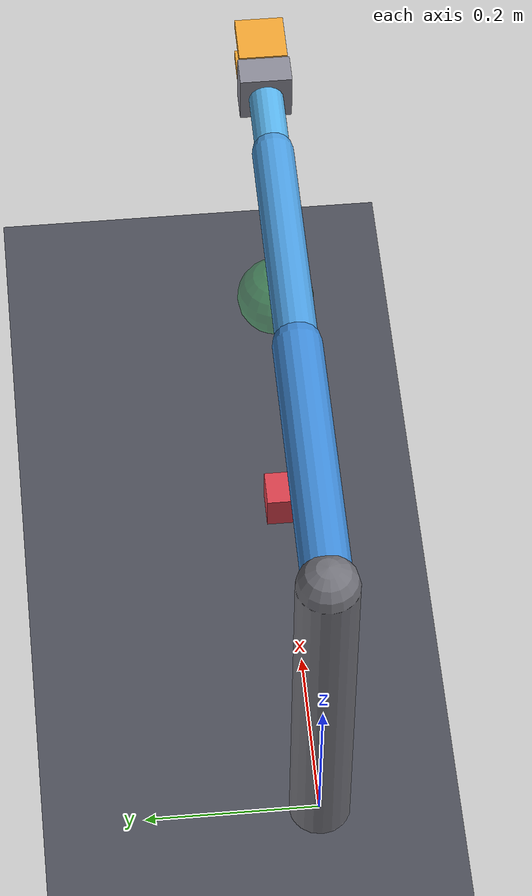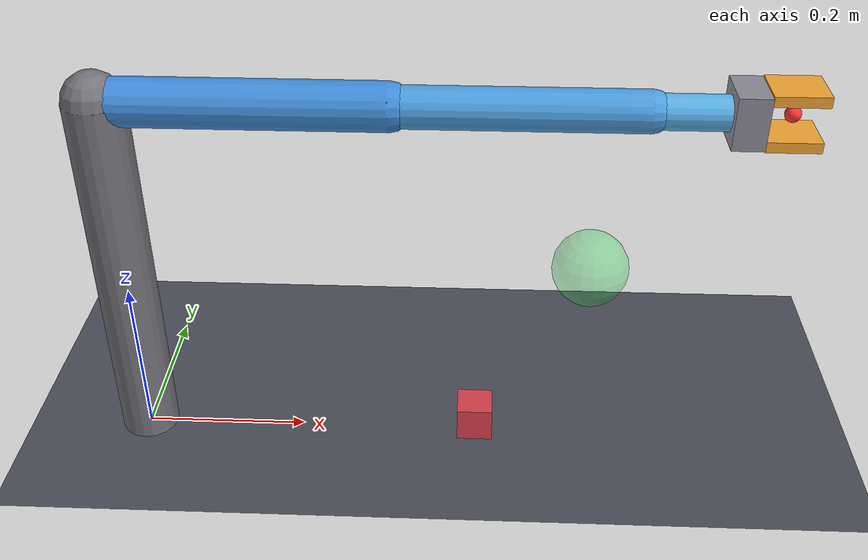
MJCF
<mujoco model="pick_place_arm">
  <compiler angle="radian" autolimits="true"/>

  <option timestep="0.002" gravity="0 0 -9.81" integrator="implicitfast"
          iterations="60" ls_iterations="20" cone="elliptic"/>

  <visual>
    <headlight ambient="0.4 0.4 0.4" diffuse="0.6 0.6 0.6"/>
    <global offwidth="640" offheight="480"/>
  </visual>

  <default>
    <!-- Arm links: no contact at all, moderate damping so position control
         is well behaved without needing an aggressive gain. -->
    <default class="arm">
      <joint type="hinge" axis="0 1 0" damping="3.0" armature="0.05"/>
      <geom type="capsule" contype="0" conaffinity="0" density="700"
            rgba="0.25 0.55 0.85 1"/>
    </default>

    <!-- Fingertip pads: collide only with the box. High sliding friction
         and a soft-but-quick contact (solref) so the grasp is stable. -->
    <default class="pad">
      <geom type="box" contype="2" conaffinity="4"
            friction="2.0 0.05 0.001" solref="0.004 1" solimp="0.95 0.99 0.001"
            density="800" rgba="0.95 0.65 0.2 1"/>
    </default>

    <!-- The manipulated object. -->
    <default class="obj">
      <geom type="box" contype="4" conaffinity="1"
            friction="1.0 0.05 0.001" rgba="0.85 0.25 0.30 1"/>
    </default>
  </default>

  <worldbody>
    <light name="top" pos="0.4 -0.5 1.5" dir="0 0.3 -1" diffuse="0.8 0.8 0.8"/>

    <!-- The "table" is just the ground plane at z=0. -->
    <geom name="floor" type="plane" size="2 2 0.05"
          contype="1" conaffinity="1" friction="1.0 0.05 0.001"
          rgba="0.30 0.31 0.35 1"/>

    <!-- Static pillar the arm is mounted on. Purely cosmetic (no contact). -->
    <geom name="pillar" type="capsule" fromto="0 0 0 0 0 0.45" size="0.035"
          contype="0" conaffinity="0" rgba="0.45 0.45 0.48 1"/>

    <!-- ================= ARM ================= -->
    <body name="link1" pos="0 0 0.45" childclass="arm">
      <joint name="joint1" range="-2.0 2.0"/>
      <geom name="g_link1" fromto="0 0 0 0.32 0 0" size="0.028"/>

      <body name="link2" pos="0.32 0 0">
        <joint name="joint2" range="-2.6 2.6"/>
        <geom name="g_link2" fromto="0 0 0 0.28 0 0" size="0.024"
              rgba="0.30 0.62 0.88 1"/>

        <body name="link3" pos="0.28 0 0">
          <joint name="joint3" range="-2.2 2.2"/>
          <geom name="g_link3" fromto="0 0 0 0.10 0 0" size="0.020"
                rgba="0.35 0.70 0.92 1"/>

          <!-- ============== GRIPPER ==============
               Local +x is the approach direction. Fingers slide along
               local +/-z, i.e. they close in the plane of motion. -->
          <body name="palm" pos="0.10 0 0">
            <geom name="g_palm" type="box" size="0.018 0.030 0.030"
                  contype="0" conaffinity="0" rgba="0.55 0.55 0.60 1"/>

            <!-- The point the controller and reward treat as "the hand".
                 Sits between the two pads. -->
            <site name="grip_site" pos="0.048 0 0" size="0.009"
                  rgba="1 0.2 0.2 0.9"/>

            <body name="finger_left" pos="0.018 0 0">
              <joint name="fj_left" type="slide" axis="0 0 1"
                     range="0 0.045" damping="8" armature="0.01"/>
              <geom name="pad_left" class="pad" pos="0.030 0 0.026"
                    size="0.030 0.028 0.006"/>
            </body>

            <body name="finger_right" pos="0.018 0 0">
              <joint name="fj_right" type="slide" axis="0 0 -1"
                     range="0 0.045" damping="8" armature="0.01"/>
              <geom name="pad_right" class="pad" pos="0.030 0 -0.026"
                    size="0.030 0.028 0.006"/>
            </body>
          </body>
        </body>
      </body>
    </body>

    <!-- ================= OBJECT ================= -->
    <body name="box" pos="0.42 0 0.022">
      <freejoint name="box_free"/>
      <geom name="g_box" class="obj" size="0.022 0.022 0.022" mass="0.05"/>
      <site name="box_site" pos="0 0 0" size="0.006" rgba="1 1 0 0.5"/>
    </body>

    <!-- Target location. Position is overwritten every reset from Python
         via model.site_pos, so this is only the default. -->
    <site name="goal" pos="0.55 0 0.25" size="0.045" type="sphere"
          rgba="0.20 0.90 0.35 0.35"/>

    <camera name="topdown" pos="0.40 -1.35 0.35" xyaxes="1 0 0 0 0 1"/>
    <camera name="angled"  pos="0.95 -1.05 0.85" xyaxes="0.74 0.67 0 -0.31 0.34 0.89"/>
  </worldbody>

  <actuator>
    <position name="a_joint1" joint="joint1" kp="120" ctrlrange="-2.0 2.0" forcerange="-60 60"/>
    <position name="a_joint2" joint="joint2" kp="90"  ctrlrange="-2.6 2.6" forcerange="-45 45"/>
    <position name="a_joint3" joint="joint3" kp="45"  ctrlrange="-2.2 2.2" forcerange="-25 25"/>

    <!-- One command drives both fingers symmetrically (the env writes the
         same value to both), which is how a parallel-jaw gripper behaves. -->
    <position name="a_grip_left"  joint="fj_left"  kp="800" ctrlrange="0 0.045" forcerange="-60 60"/>
    <position name="a_grip_right" joint="fj_right" kp="800" ctrlrange="0 0.045" forcerange="-60 60"/>
  </actuator>
</mujoco>
